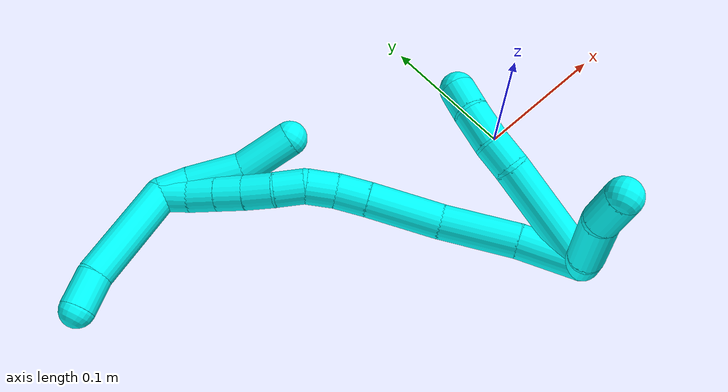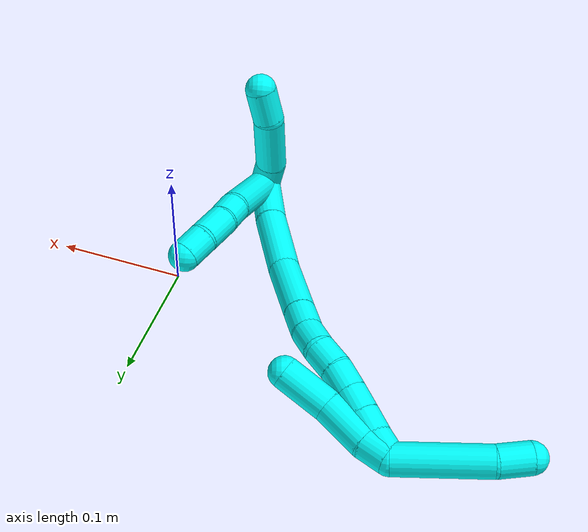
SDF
<sdf version="1.7">
 <world name="default">
  <model name="3">
   <static>0</static>
   <link name="3">
    <collision name="collision-cylinder-e_1_2_8">
     <pose>-0.026569 0.026808 -0.015492 -2.09481 -0.709182 1.14087</pose>
     <geometry><cylinder><radius>0.0125</radius><length>0.081598</length></cylinder></geometry>
     <surface>
      <friction><ode><mu>1.16</mu><mu2>1.16</mu2><slip1>0</slip1><slip2>0</slip2></ode></friction>
      <contact><ode><kp>1e+06</kp><kd>1</kd><max_vel>0</max_vel><min_depth>0.001</min_depth></ode></contact>
     </surface>
    </collision>
    <visual name="visual-cylinder-e_1_2_8">
     <pose>-0.026569 0.026808 -0.015492 -2.09481 -0.709182 1.14087</pose>
     <geometry><cylinder><radius>0.0125</radius><length>0.081598</length></cylinder></geometry>
     <material><ambient>0.003922 1 0.996078 1</ambient></material>
    </visual>
    <collision name="collision-cylinder-e_2_8_9">
     <pose>-0.06114 0.057868 -0.035552 -2.3918 -0.908447 1.78491</pose>
     <geometry><cylinder><radius>0.0125</radius><length>0.020296</length></cylinder></geometry>
     <surface>
      <friction><ode><mu>1.16</mu><mu2>1.16</mu2><slip1>0</slip1><slip2>0</slip2></ode></friction>
      <contact><ode><kp>1e+06</kp><kd>1</kd><max_vel>0</max_vel><min_depth>0.001</min_depth></ode></contact>
     </surface>
    </collision>
    <visual name="visual-cylinder-e_2_8_9">
     <pose>-0.06114 0.057868 -0.035552 -2.3918 -0.908447 1.78491</pose>
     <geometry><cylinder><radius>0.0125</radius><length>0.020296</length></cylinder></geometry>
     <material><ambient>0.003922 1 0.996078 1</ambient></material>
    </visual>
    <collision name="collision-cylinder-e_3_9_10">
     <pose>-0.079559 0.065968 -0.04768 -2.67099 -0.887359 2.20724</pose>
     <geometry><cylinder><radius>0.0125</radius><length>0.026868</length></cylinder></geometry>
     <surface>
      <friction><ode><mu>1.16</mu><mu2>1.16</mu2><slip1>0</slip1><slip2>0</slip2></ode></friction>
      <contact><ode><kp>1e+06</kp><kd>1</kd><max_vel>0</max_vel><min_depth>0.001</min_depth></ode></contact>
     </surface>
    </collision>
    <visual name="visual-cylinder-e_3_9_10">
     <pose>-0.079559 0.065968 -0.04768 -2.67099 -0.887359 2.20724</pose>
     <geometry><cylinder><radius>0.0125</radius><length>0.026868</length></cylinder></geometry>
     <material><ambient>0.003922 1 0.996078 1</ambient></material>
    </visual>
    <collision name="collision-cylinder-e_4_10_6">
     <pose>-0.098194 0.070654 -0.061913 -3.01644 -0.884966 2.87863</pose>
     <geometry><cylinder><radius>0.0125</radius><length>0.021237</length></cylinder></geometry>
     <surface>
      <friction><ode><mu>1.16</mu><mu2>1.16</mu2><slip1>0</slip1><slip2>0</slip2></ode></friction>
      <contact><ode><kp>1e+06</kp><kd>1</kd><max_vel>0</max_vel><min_depth>0.001</min_depth></ode></contact>
     </surface>
    </collision>
    <visual name="visual-cylinder-e_4_10_6">
     <pose>-0.098194 0.070654 -0.061913 -3.01644 -0.884966 2.87863</pose>
     <geometry><cylinder><radius>0.0125</radius><length>0.021237</length></cylinder></geometry>
     <material><ambient>0.003922 1 0.996078 1</ambient></material>
    </visual>
    <collision name="collision-cylinder-e_1_2_11">
     <pose>0.003861 0.011032 0.000825 -1.49615 0.335773 -0.312004</pose>
     <geometry><cylinder><radius>0.0125</radius><length>0.023435</length></cylinder></geometry>
     <surface>
      <friction><ode><mu>1.16</mu><mu2>1.16</mu2><slip1>0</slip1><slip2>0</slip2></ode></friction>
      <contact><ode><kp>1e+06</kp><kd>1</kd><max_vel>0</max_vel><min_depth>0.001</min_depth></ode></contact>
     </surface>
    </collision>
    <visual name="visual-cylinder-e_1_2_11">
     <pose>0.003861 0.011032 0.000825 -1.49615 0.335773 -0.312004</pose>
     <geometry><cylinder><radius>0.0125</radius><length>0.023435</length></cylinder></geometry>
     <material><ambient>0.003922 1 0.996078 1</ambient></material>
    </visual>
    <collision name="collision-cylinder-e_2_11_12">
     <pose>0.014692 0.045147 -0.002756 -1.75943 0.288348 -0.347499</pose>
     <geometry><cylinder><radius>0.0125</radius><length>0.049022</length></cylinder></geometry>
     <surface>
      <friction><ode><mu>1.16</mu><mu2>1.16</mu2><slip1>0</slip1><slip2>0</slip2></ode></friction>
      <contact><ode><kp>1e+06</kp><kd>1</kd><max_vel>0</max_vel><min_depth>0.001</min_depth></ode></contact>
     </surface>
    </collision>
    <visual name="visual-cylinder-e_2_11_12">
     <pose>0.014692 0.045147 -0.002756 -1.75943 0.288348 -0.347499</pose>
     <geometry><cylinder><radius>0.0125</radius><length>0.049022</length></cylinder></geometry>
     <material><ambient>0.003922 1 0.996078 1</ambient></material>
    </visual>
    <collision name="collision-cylinder-e_3_12_5">
     <pose>0.028366 0.079234 -0.012021 -1.9865 0.508379 -0.758742</pose>
     <geometry><cylinder><radius>0.0125</radius><length>0.027543</length></cylinder></geometry>
     <surface>
      <friction><ode><mu>1.16</mu><mu2>1.16</mu2><slip1>0</slip1><slip2>0</slip2></ode></friction>
      <contact><ode><kp>1e+06</kp><kd>1</kd><max_vel>0</max_vel><min_depth>0.001</min_depth></ode></contact>
     </surface>
    </collision>
    <visual name="visual-cylinder-e_3_12_5">
     <pose>0.028366 0.079234 -0.012021 -1.9865 0.508379 -0.758742</pose>
     <geometry><cylinder><radius>0.0125</radius><length>0.027543</length></cylinder></geometry>
     <material><ambient>0.003922 1 0.996078 1</ambient></material>
    </visual>
    <collision name="collision-cylinder-e_1_2_13">
     <pose>-0.020975 0.007372 0.001987 -1.30757 -1.22171 0.984815</pose>
     <geometry><cylinder><radius>0.0125</radius><length>0.044642</length></cylinder></geometry>
     <surface>
      <friction><ode><mu>1.16</mu><mu2>1.16</mu2><slip1>0</slip1><slip2>0</slip2></ode></friction>
      <contact><ode><kp>1e+06</kp><kd>1</kd><max_vel>0</max_vel><min_depth>0.001</min_depth></ode></contact>
     </surface>
    </collision>
    <visual name="visual-cylinder-e_1_2_13">
     <pose>-0.020975 0.007372 0.001987 -1.30757 -1.22171 0.984815</pose>
     <geometry><cylinder><radius>0.0125</radius><length>0.044642</length></cylinder></geometry>
     <material><ambient>0.003922 1 0.996078 1</ambient></material>
    </visual>
    <collision name="collision-cylinder-e_2_13_14">
     <pose>-0.06762 0.023182 0.008821 -1.04932 -1.20843 0.760227</pose>
     <geometry><cylinder><radius>0.0125</radius><length>0.054907</length></cylinder></geometry>
     <surface>
      <friction><ode><mu>1.16</mu><mu2>1.16</mu2><slip1>0</slip1><slip2>0</slip2></ode></friction>
      <contact><ode><kp>1e+06</kp><kd>1</kd><max_vel>0</max_vel><min_depth>0.001</min_depth></ode></contact>
     </surface>
    </collision>
    <visual name="visual-cylinder-e_2_13_14">
     <pose>-0.06762 0.023182 0.008821 -1.04932 -1.20843 0.760227</pose>
     <geometry><cylinder><radius>0.0125</radius><length>0.054907</length></cylinder></geometry>
     <material><ambient>0.003922 1 0.996078 1</ambient></material>
    </visual>
    <collision name="collision-cylinder-e_3_14_15">
     <pose>-0.116176 0.044047 0.018259 -1.21698 -1.04609 0.76396</pose>
     <geometry><cylinder><radius>0.0125</radius><length>0.052887</length></cylinder></geometry>
     <surface>
      <friction><ode><mu>1.16</mu><mu2>1.16</mu2><slip1>0</slip1><slip2>0</slip2></ode></friction>
      <contact><ode><kp>1e+06</kp><kd>1</kd><max_vel>0</max_vel><min_depth>0.001</min_depth></ode></contact>
     </surface>
    </collision>
    <visual name="visual-cylinder-e_3_14_15">
     <pose>-0.116176 0.044047 0.018259 -1.21698 -1.04609 0.76396</pose>
     <geometry><cylinder><radius>0.0125</radius><length>0.052887</length></cylinder></geometry>
     <material><ambient>0.003922 1 0.996078 1</ambient></material>
    </visual>
    <collision name="collision-cylinder-e_4_15_16">
     <pose>-0.149111 0.061583 0.02514 -1.14923 -1.06238 0.727027</pose>
     <geometry><cylinder><radius>0.0125</radius><length>0.023007</length></cylinder></geometry>
     <surface>
      <friction><ode><mu>1.16</mu><mu2>1.16</mu2><slip1>0</slip1><slip2>0</slip2></ode></friction>
      <contact><ode><kp>1e+06</kp><kd>1</kd><max_vel>0</max_vel><min_depth>0.001</min_depth></ode></contact>
     </surface>
    </collision>
    <visual name="visual-cylinder-e_4_15_16">
     <pose>-0.149111 0.061583 0.02514 -1.14923 -1.06238 0.727027</pose>
     <geometry><cylinder><radius>0.0125</radius><length>0.023007</length></cylinder></geometry>
     <material><ambient>0.003922 1 0.996078 1</ambient></material>
    </visual>
    <collision name="collision-cylinder-e_5_16_17">
     <pose>-0.16779 0.072099 0.031086 -0.976357 -0.923393 0.516655</pose>
     <geometry><cylinder><radius>0.0125</radius><length>0.02164</length></cylinder></geometry>
     <surface>
      <friction><ode><mu>1.16</mu><mu2>1.16</mu2><slip1>0</slip1><slip2>0</slip2></ode></friction>
      <contact><ode><kp>1e+06</kp><kd>1</kd><max_vel>0</max_vel><min_depth>0.001</min_depth></ode></contact>
     </surface>
    </collision>
    <visual name="visual-cylinder-e_5_16_17">
     <pose>-0.16779 0.072099 0.031086 -0.976357 -0.923393 0.516655</pose>
     <geometry><cylinder><radius>0.0125</radius><length>0.02164</length></cylinder></geometry>
     <material><ambient>0.003922 1 0.996078 1</ambient></material>
    </visual>
    <collision name="collision-cylinder-e_6_17_18">
     <pose>-0.184926 0.080572 0.040584 -0.483459 -0.910954 0.240371</pose>
     <geometry><cylinder><radius>0.0125</radius><length>0.02153</length></cylinder></geometry>
     <surface>
      <friction><ode><mu>1.16</mu><mu2>1.16</mu2><slip1>0</slip1><slip2>0</slip2></ode></friction>
      <contact><ode><kp>1e+06</kp><kd>1</kd><max_vel>0</max_vel><min_depth>0.001</min_depth></ode></contact>
     </surface>
    </collision>
    <visual name="visual-cylinder-e_6_17_18">
     <pose>-0.184926 0.080572 0.040584 -0.483459 -0.910954 0.240371</pose>
     <geometry><cylinder><radius>0.0125</radius><length>0.02153</length></cylinder></geometry>
     <material><ambient>0.003922 1 0.996078 1</ambient></material>
    </visual>
    <collision name="collision-cylinder-e_7_18_19">
     <pose>-0.202708 0.085464 0.051352 -0.354769 -1.05559 0.208256</pose>
     <geometry><cylinder><radius>0.0125</radius><length>0.021322</length></cylinder></geometry>
     <surface>
      <friction><ode><mu>1.16</mu><mu2>1.16</mu2><slip1>0</slip1><slip2>0</slip2></ode></friction>
      <contact><ode><kp>1e+06</kp><kd>1</kd><max_vel>0</max_vel><min_depth>0.001</min_depth></ode></contact>
     </surface>
    </collision>
    <visual name="visual-cylinder-e_7_18_19">
     <pose>-0.202708 0.085464 0.051352 -0.354769 -1.05559 0.208256</pose>
     <geometry><cylinder><radius>0.0125</radius><length>0.021322</length></cylinder></geometry>
     <material><ambient>0.003922 1 0.996078 1</ambient></material>
    </visual>
    <collision name="collision-cylinder-e_8_19_20">
     <pose>-0.220839 0.089273 0.060526 -0.436851 -1.08375 0.265665</pose>
     <geometry><cylinder><radius>0.0125</radius><length>0.020038</length></cylinder></geometry>
     <surface>
      <friction><ode><mu>1.16</mu><mu2>1.16</mu2><slip1>0</slip1><slip2>0</slip2></ode></friction>
      <contact><ode><kp>1e+06</kp><kd>1</kd><max_vel>0</max_vel><min_depth>0.001</min_depth></ode></contact>
     </surface>
    </collision>
    <visual name="visual-cylinder-e_8_19_20">
     <pose>-0.220839 0.089273 0.060526 -0.436851 -1.08375 0.265665</pose>
     <geometry><cylinder><radius>0.0125</radius><length>0.020038</length></cylinder></geometry>
     <material><ambient>0.003922 1 0.996078 1</ambient></material>
    </visual>
    <collision name="collision-cylinder-e_9_20_21">
     <pose>-0.238557 0.093161 0.069015 -0.422094 -1.08782 0.257688</pose>
     <geometry><cylinder><radius>0.0125</radius><length>0.020017</length></cylinder></geometry>
     <surface>
      <friction><ode><mu>1.16</mu><mu2>1.16</mu2><slip1>0</slip1><slip2>0</slip2></ode></friction>
      <contact><ode><kp>1e+06</kp><kd>1</kd><max_vel>0</max_vel><min_depth>0.001</min_depth></ode></contact>
     </surface>
    </collision>
    <visual name="visual-cylinder-e_9_20_21">
     <pose>-0.238557 0.093161 0.069015 -0.422094 -1.08782 0.257688</pose>
     <geometry><cylinder><radius>0.0125</radius><length>0.020017</length></cylinder></geometry>
     <material><ambient>0.003922 1 0.996078 1</ambient></material>
    </visual>
    <collision name="collision-cylinder-e_10_21_1">
     <pose>-0.255942 0.098338 0.077351 -0.674139 -1.0193 0.386829</pose>
     <geometry><cylinder><radius>0.0125</radius><length>0.020011</length></cylinder></geometry>
     <surface>
      <friction><ode><mu>1.16</mu><mu2>1.16</mu2><slip1>0</slip1><slip2>0</slip2></ode></friction>
      <contact><ode><kp>1e+06</kp><kd>1</kd><max_vel>0</max_vel><min_depth>0.001</min_depth></ode></contact>
     </surface>
    </collision>
    <visual name="visual-cylinder-e_10_21_1">
     <pose>-0.255942 0.098338 0.077351 -0.674139 -1.0193 0.386829</pose>
     <geometry><cylinder><radius>0.0125</radius><length>0.020011</length></cylinder></geometry>
     <material><ambient>0.003922 1 0.996078 1</ambient></material>
    </visual>
    <collision name="collision-cylinder-e_1_1_22">
     <pose>-0.265253 0.109421 0.117617 -0.212672 -0.021297 0.002273</pose>
     <geometry><cylinder><radius>0.0125</radius><length>0.074026</length></cylinder></geometry>
     <surface>
      <friction><ode><mu>1.16</mu><mu2>1.16</mu2><slip1>0</slip1><slip2>0</slip2></ode></friction>
      <contact><ode><kp>1e+06</kp><kd>1</kd><max_vel>0</max_vel><min_depth>0.001</min_depth></ode></contact>
     </surface>
    </collision>
    <visual name="visual-cylinder-e_1_1_22">
     <pose>-0.265253 0.109421 0.117617 -0.212672 -0.021297 0.002273</pose>
     <geometry><cylinder><radius>0.0125</radius><length>0.074026</length></cylinder></geometry>
     <material><ambient>0.003922 1 0.996078 1</ambient></material>
    </visual>
    <collision name="collision-cylinder-e_2_22_4">
     <pose>-0.264155 0.118145 0.166605 -0.071175 0.145704 -0.005197</pose>
     <geometry><cylinder><radius>0.0125</radius><length>0.025974</length></cylinder></geometry>
     <surface>
      <friction><ode><mu>1.16</mu><mu2>1.16</mu2><slip1>0</slip1><slip2>0</slip2></ode></friction>
      <contact><ode><kp>1e+06</kp><kd>1</kd><max_vel>0</max_vel><min_depth>0.001</min_depth></ode></contact>
     </surface>
    </collision>
    <visual name="visual-cylinder-e_2_22_4">
     <pose>-0.264155 0.118145 0.166605 -0.071175 0.145704 -0.005197</pose>
     <geometry><cylinder><radius>0.0125</radius><length>0.025974</length></cylinder></geometry>
     <material><ambient>0.003922 1 0.996078 1</ambient></material>
    </visual>
    <collision name="collision-cylinder-e_1_1_23">
     <pose>-0.258279 0.098548 0.073574 2.77064 0.632049 2.09968</pose>
     <geometry><cylinder><radius>0.0125</radius><length>0.020938</length></cylinder></geometry>
     <surface>
      <friction><ode><mu>1.16</mu><mu2>1.16</mu2><slip1>0</slip1><slip2>0</slip2></ode></friction>
      <contact><ode><kp>1e+06</kp><kd>1</kd><max_vel>0</max_vel><min_depth>0.001</min_depth></ode></contact>
     </surface>
    </collision>
    <visual name="visual-cylinder-e_1_1_23">
     <pose>-0.258279 0.098548 0.073574 2.77064 0.632049 2.09968</pose>
     <geometry><cylinder><radius>0.0125</radius><length>0.020938</length></cylinder></geometry>
     <material><ambient>0.003922 1 0.996078 1</ambient></material>
    </visual>
    <collision name="collision-cylinder-e_2_23_24">
     <pose>-0.237908 0.091102 0.05299 2.80948 0.812133 2.39823</pose>
     <geometry><cylinder><radius>0.0125</radius><length>0.039094</length></cylinder></geometry>
     <surface>
      <friction><ode><mu>1.16</mu><mu2>1.16</mu2><slip1>0</slip1><slip2>0</slip2></ode></friction>
      <contact><ode><kp>1e+06</kp><kd>1</kd><max_vel>0</max_vel><min_depth>0.001</min_depth></ode></contact>
     </surface>
    </collision>
    <visual name="visual-cylinder-e_2_23_24">
     <pose>-0.237908 0.091102 0.05299 2.80948 0.812133 2.39823</pose>
     <geometry><cylinder><radius>0.0125</radius><length>0.039094</length></cylinder></geometry>
     <material><ambient>0.003922 1 0.996078 1</ambient></material>
    </visual>
    <collision name="collision-cylinder-e_3_24_3">
     <pose>-0.212032 0.087017 0.024071 -3.1231 0.624794 -3.08433</pose>
     <geometry><cylinder><radius>0.0125</radius><length>0.039968</length></cylinder></geometry>
     <surface>
      <friction><ode><mu>1.16</mu><mu2>1.16</mu2><slip1>0</slip1><slip2>0</slip2></ode></friction>
      <contact><ode><kp>1e+06</kp><kd>1</kd><max_vel>0</max_vel><min_depth>0.001</min_depth></ode></contact>
     </surface>
    </collision>
    <visual name="visual-cylinder-e_3_24_3">
     <pose>-0.212032 0.087017 0.024071 -3.1231 0.624794 -3.08433</pose>
     <geometry><cylinder><radius>0.0125</radius><length>0.039968</length></cylinder></geometry>
     <material><ambient>0.003922 1 0.996078 1</ambient></material>
    </visual>
    <collision name="collision-sphere-3">
     <pose>-0.200343 0.087317 0.007865 0 -0 0</pose>
     <geometry><sphere><radius>0.0125</radius></sphere></geometry>
     <surface>
      <friction><ode><mu>1.16</mu><mu2>1.16</mu2><slip1>0</slip1><slip2>0</slip2></ode></friction>
      <contact><ode><kp>1e+06</kp><kd>1</kd><max_vel>0</max_vel><min_depth>0.001</min_depth></ode></contact>
     </surface>
    </collision>
    <visual name="visual-sphere-3">
     <pose>-0.200343 0.087317 0.007865 0 -0 0</pose>
     <geometry><sphere><radius>0.0125</radius></sphere></geometry>
     <material><ambient>0.003922 1 0.996078 1</ambient></material>
    </visual>
    <collision name="collision-sphere-24">
     <pose>-0.223722 0.086718 0.040277 0 -0 0</pose>
     <geometry><sphere><radius>0.0125</radius></sphere></geometry>
     <surface>
      <friction><ode><mu>1.16</mu><mu2>1.16</mu2><slip1>0</slip1><slip2>0</slip2></ode></friction>
      <contact><ode><kp>1e+06</kp><kd>1</kd><max_vel>0</max_vel><min_depth>0.001</min_depth></ode></contact>
     </surface>
    </collision>
    <visual name="visual-sphere-24">
     <pose>-0.223722 0.086718 0.040277 0 -0 0</pose>
     <geometry><sphere><radius>0.0125</radius></sphere></geometry>
     <material><ambient>0.003922 1 0.996078 1</ambient></material>
    </visual>
    <collision name="collision-sphere-23">
     <pose>-0.252094 0.095486 0.065702 0 -0 0</pose>
     <geometry><sphere><radius>0.0125</radius></sphere></geometry>
     <surface>
      <friction><ode><mu>1.16</mu><mu2>1.16</mu2><slip1>0</slip1><slip2>0</slip2></ode></friction>
      <contact><ode><kp>1e+06</kp><kd>1</kd><max_vel>0</max_vel><min_depth>0.001</min_depth></ode></contact>
     </surface>
    </collision>
    <visual name="visual-sphere-23">
     <pose>-0.252094 0.095486 0.065702 0 -0 0</pose>
     <geometry><sphere><radius>0.0125</radius></sphere></geometry>
     <material><ambient>0.003922 1 0.996078 1</ambient></material>
    </visual>
    <collision name="collision-sphere-4">
     <pose>-0.26227 0.119059 0.179422 0 -0 0</pose>
     <geometry><sphere><radius>0.0125</radius></sphere></geometry>
     <surface>
      <friction><ode><mu>1.16</mu><mu2>1.16</mu2><slip1>0</slip1><slip2>0</slip2></ode></friction>
      <contact><ode><kp>1e+06</kp><kd>1</kd><max_vel>0</max_vel><min_depth>0.001</min_depth></ode></contact>
     </surface>
    </collision>
    <visual name="visual-sphere-4">
     <pose>-0.26227 0.119059 0.179422 0 -0 0</pose>
     <geometry><sphere><radius>0.0125</radius></sphere></geometry>
     <material><ambient>0.003922 1 0.996078 1</ambient></material>
    </visual>
    <collision name="collision-sphere-22">
     <pose>-0.266041 0.117232 0.153788 0 -0 0</pose>
     <geometry><sphere><radius>0.0125</radius></sphere></geometry>
     <surface>
      <friction><ode><mu>1.16</mu><mu2>1.16</mu2><slip1>0</slip1><slip2>0</slip2></ode></friction>
      <contact><ode><kp>1e+06</kp><kd>1</kd><max_vel>0</max_vel><min_depth>0.001</min_depth></ode></contact>
     </surface>
    </collision>
    <visual name="visual-sphere-22">
     <pose>-0.266041 0.117232 0.153788 0 -0 0</pose>
     <geometry><sphere><radius>0.0125</radius></sphere></geometry>
     <material><ambient>0.003922 1 0.996078 1</ambient></material>
    </visual>
    <collision name="collision-sphere-1">
     <pose>-0.264465 0.10161 0.081447 0 -0 0</pose>
     <geometry><sphere><radius>0.0125</radius></sphere></geometry>
     <surface>
      <friction><ode><mu>1.16</mu><mu2>1.16</mu2><slip1>0</slip1><slip2>0</slip2></ode></friction>
      <contact><ode><kp>1e+06</kp><kd>1</kd><max_vel>0</max_vel><min_depth>0.001</min_depth></ode></contact>
     </surface>
    </collision>
    <visual name="visual-sphere-1">
     <pose>-0.264465 0.10161 0.081447 0 -0 0</pose>
     <geometry><sphere><radius>0.0125</radius></sphere></geometry>
     <material><ambient>0.003922 1 0.996078 1</ambient></material>
    </visual>
    <collision name="collision-sphere-21">
     <pose>-0.24742 0.095065 0.073255 0 -0 0</pose>
     <geometry><sphere><radius>0.0125</radius></sphere></geometry>
     <surface>
      <friction><ode><mu>1.16</mu><mu2>1.16</mu2><slip1>0</slip1><slip2>0</slip2></ode></friction>
      <contact><ode><kp>1e+06</kp><kd>1</kd><max_vel>0</max_vel><min_depth>0.001</min_depth></ode></contact>
     </surface>
    </collision>
    <visual name="visual-sphere-21">
     <pose>-0.24742 0.095065 0.073255 0 -0 0</pose>
     <geometry><sphere><radius>0.0125</radius></sphere></geometry>
     <material><ambient>0.003922 1 0.996078 1</ambient></material>
    </visual>
    <collision name="collision-sphere-11">
     <pose>0.007722 0.022064 0.00165 0 -0 0</pose>
     <geometry><sphere><radius>0.0125</radius></sphere></geometry>
     <surface>
      <friction><ode><mu>1.16</mu><mu2>1.16</mu2><slip1>0</slip1><slip2>0</slip2></ode></friction>
      <contact><ode><kp>1e+06</kp><kd>1</kd><max_vel>0</max_vel><min_depth>0.001</min_depth></ode></contact>
     </surface>
    </collision>
    <visual name="visual-sphere-11">
     <pose>0.007722 0.022064 0.00165 0 -0 0</pose>
     <geometry><sphere><radius>0.0125</radius></sphere></geometry>
     <material><ambient>0.003922 1 0.996078 1</ambient></material>
    </visual>
    <collision name="collision-sphere-6">
     <pose>-0.106412 0.071493 -0.068586 0 -0 0</pose>
     <geometry><sphere><radius>0.0125</radius></sphere></geometry>
     <surface>
      <friction><ode><mu>1.16</mu><mu2>1.16</mu2><slip1>0</slip1><slip2>0</slip2></ode></friction>
      <contact><ode><kp>1e+06</kp><kd>1</kd><max_vel>0</max_vel><min_depth>0.001</min_depth></ode></contact>
     </surface>
    </collision>
    <visual name="visual-sphere-6">
     <pose>-0.106412 0.071493 -0.068586 0 -0 0</pose>
     <geometry><sphere><radius>0.0125</radius></sphere></geometry>
     <material><ambient>0.003922 1 0.996078 1</ambient></material>
    </visual>
    <collision name="collision-sphere-10">
     <pose>-0.089976 0.069814 -0.055241 0 -0 0</pose>
     <geometry><sphere><radius>0.0125</radius></sphere></geometry>
     <surface>
      <friction><ode><mu>1.16</mu><mu2>1.16</mu2><slip1>0</slip1><slip2>0</slip2></ode></friction>
      <contact><ode><kp>1e+06</kp><kd>1</kd><max_vel>0</max_vel><min_depth>0.001</min_depth></ode></contact>
     </surface>
    </collision>
    <visual name="visual-sphere-10">
     <pose>-0.089976 0.069814 -0.055241 0 -0 0</pose>
     <geometry><sphere><radius>0.0125</radius></sphere></geometry>
     <material><ambient>0.003922 1 0.996078 1</ambient></material>
    </visual>
    <collision name="collision-sphere-9">
     <pose>-0.069142 0.062121 -0.040119 0 -0 0</pose>
     <geometry><sphere><radius>0.0125</radius></sphere></geometry>
     <surface>
      <friction><ode><mu>1.16</mu><mu2>1.16</mu2><slip1>0</slip1><slip2>0</slip2></ode></friction>
      <contact><ode><kp>1e+06</kp><kd>1</kd><max_vel>0</max_vel><min_depth>0.001</min_depth></ode></contact>
     </surface>
    </collision>
    <visual name="visual-sphere-9">
     <pose>-0.069142 0.062121 -0.040119 0 -0 0</pose>
     <geometry><sphere><radius>0.0125</radius></sphere></geometry>
     <material><ambient>0.003922 1 0.996078 1</ambient></material>
    </visual>
    <collision name="collision-sphere-2">
     <geometry><sphere><radius>0.0125</radius></sphere></geometry>
     <surface>
      <friction><ode><mu>1.16</mu><mu2>1.16</mu2><slip1>0</slip1><slip2>0</slip2></ode></friction>
      <contact><ode><kp>1e+06</kp><kd>1</kd><max_vel>0</max_vel><min_depth>0.001</min_depth></ode></contact>
     </surface>
    </collision>
    <visual name="visual-sphere-2">
     <geometry><sphere><radius>0.0125</radius></sphere></geometry>
     <material><ambient>0.003922 1 0.996078 1</ambient></material>
    </visual>
    <collision name="collision-sphere-19">
     <pose>-0.211985 0.087289 0.056278 0 -0 0</pose>
     <geometry><sphere><radius>0.0125</radius></sphere></geometry>
     <surface>
      <friction><ode><mu>1.16</mu><mu2>1.16</mu2><slip1>0</slip1><slip2>0</slip2></ode></friction>
      <contact><ode><kp>1e+06</kp><kd>1</kd><max_vel>0</max_vel><min_depth>0.001</min_depth></ode></contact>
     </surface>
    </collision>
    <visual name="visual-sphere-19">
     <pose>-0.211985 0.087289 0.056278 0 -0 0</pose>
     <geometry><sphere><radius>0.0125</radius></sphere></geometry>
     <material><ambient>0.003922 1 0.996078 1</ambient></material>
    </visual>
    <collision name="collision-sphere-8">
     <pose>-0.053138 0.053615 -0.030984 0 -0 0</pose>
     <geometry><sphere><radius>0.0125</radius></sphere></geometry>
     <surface>
      <friction><ode><mu>1.16</mu><mu2>1.16</mu2><slip1>0</slip1><slip2>0</slip2></ode></friction>
      <contact><ode><kp>1e+06</kp><kd>1</kd><max_vel>0</max_vel><min_depth>0.001</min_depth></ode></contact>
     </surface>
    </collision>
    <visual name="visual-sphere-8">
     <pose>-0.053138 0.053615 -0.030984 0 -0 0</pose>
     <geometry><sphere><radius>0.0125</radius></sphere></geometry>
     <material><ambient>0.003922 1 0.996078 1</ambient></material>
    </visual>
    <collision name="collision-sphere-12">
     <pose>0.021662 0.068229 -0.007163 0 -0 0</pose>
     <geometry><sphere><radius>0.0125</radius></sphere></geometry>
     <surface>
      <friction><ode><mu>1.16</mu><mu2>1.16</mu2><slip1>0</slip1><slip2>0</slip2></ode></friction>
      <contact><ode><kp>1e+06</kp><kd>1</kd><max_vel>0</max_vel><min_depth>0.001</min_depth></ode></contact>
     </surface>
    </collision>
    <visual name="visual-sphere-12">
     <pose>0.021662 0.068229 -0.007163 0 -0 0</pose>
     <geometry><sphere><radius>0.0125</radius></sphere></geometry>
     <material><ambient>0.003922 1 0.996078 1</ambient></material>
    </visual>
    <collision name="collision-sphere-5">
     <pose>0.035069 0.09024 -0.016879 0 -0 0</pose>
     <geometry><sphere><radius>0.0125</radius></sphere></geometry>
     <surface>
      <friction><ode><mu>1.16</mu><mu2>1.16</mu2><slip1>0</slip1><slip2>0</slip2></ode></friction>
      <contact><ode><kp>1e+06</kp><kd>1</kd><max_vel>0</max_vel><min_depth>0.001</min_depth></ode></contact>
     </surface>
    </collision>
    <visual name="visual-sphere-5">
     <pose>0.035069 0.09024 -0.016879 0 -0 0</pose>
     <geometry><sphere><radius>0.0125</radius></sphere></geometry>
     <material><ambient>0.003922 1 0.996078 1</ambient></material>
    </visual>
    <collision name="collision-sphere-13">
     <pose>-0.041949 0.014743 0.003973 0 -0 0</pose>
     <geometry><sphere><radius>0.0125</radius></sphere></geometry>
     <surface>
      <friction><ode><mu>1.16</mu><mu2>1.16</mu2><slip1>0</slip1><slip2>0</slip2></ode></friction>
      <contact><ode><kp>1e+06</kp><kd>1</kd><max_vel>0</max_vel><min_depth>0.001</min_depth></ode></contact>
     </surface>
    </collision>
    <visual name="visual-sphere-13">
     <pose>-0.041949 0.014743 0.003973 0 -0 0</pose>
     <geometry><sphere><radius>0.0125</radius></sphere></geometry>
     <material><ambient>0.003922 1 0.996078 1</ambient></material>
    </visual>
    <collision name="collision-sphere-14">
     <pose>-0.09329 0.03162 0.013669 0 -0 0</pose>
     <geometry><sphere><radius>0.0125</radius></sphere></geometry>
     <surface>
      <friction><ode><mu>1.16</mu><mu2>1.16</mu2><slip1>0</slip1><slip2>0</slip2></ode></friction>
      <contact><ode><kp>1e+06</kp><kd>1</kd><max_vel>0</max_vel><min_depth>0.001</min_depth></ode></contact>
     </surface>
    </collision>
    <visual name="visual-sphere-14">
     <pose>-0.09329 0.03162 0.013669 0 -0 0</pose>
     <geometry><sphere><radius>0.0125</radius></sphere></geometry>
     <material><ambient>0.003922 1 0.996078 1</ambient></material>
    </visual>
    <collision name="collision-sphere-15">
     <pose>-0.139062 0.056473 0.022849 0 -0 0</pose>
     <geometry><sphere><radius>0.0125</radius></sphere></geometry>
     <surface>
      <friction><ode><mu>1.16</mu><mu2>1.16</mu2><slip1>0</slip1><slip2>0</slip2></ode></friction>
      <contact><ode><kp>1e+06</kp><kd>1</kd><max_vel>0</max_vel><min_depth>0.001</min_depth></ode></contact>
     </surface>
    </collision>
    <visual name="visual-sphere-15">
     <pose>-0.139062 0.056473 0.022849 0 -0 0</pose>
     <geometry><sphere><radius>0.0125</radius></sphere></geometry>
     <material><ambient>0.003922 1 0.996078 1</ambient></material>
    </visual>
    <collision name="collision-sphere-16">
     <pose>-0.159159 0.066692 0.027432 0 -0 0</pose>
     <geometry><sphere><radius>0.0125</radius></sphere></geometry>
     <surface>
      <friction><ode><mu>1.16</mu><mu2>1.16</mu2><slip1>0</slip1><slip2>0</slip2></ode></friction>
      <contact><ode><kp>1e+06</kp><kd>1</kd><max_vel>0</max_vel><min_depth>0.001</min_depth></ode></contact>
     </surface>
    </collision>
    <visual name="visual-sphere-16">
     <pose>-0.159159 0.066692 0.027432 0 -0 0</pose>
     <geometry><sphere><radius>0.0125</radius></sphere></geometry>
     <material><ambient>0.003922 1 0.996078 1</ambient></material>
    </visual>
    <collision name="collision-sphere-17">
     <pose>-0.17642 0.077505 0.034741 0 -0 0</pose>
     <geometry><sphere><radius>0.0125</radius></sphere></geometry>
     <surface>
      <friction><ode><mu>1.16</mu><mu2>1.16</mu2><slip1>0</slip1><slip2>0</slip2></ode></friction>
      <contact><ode><kp>1e+06</kp><kd>1</kd><max_vel>0</max_vel><min_depth>0.001</min_depth></ode></contact>
     </surface>
    </collision>
    <visual name="visual-sphere-17">
     <pose>-0.17642 0.077505 0.034741 0 -0 0</pose>
     <geometry><sphere><radius>0.0125</radius></sphere></geometry>
     <material><ambient>0.003922 1 0.996078 1</ambient></material>
    </visual>
    <collision name="collision-sphere-18">
     <pose>-0.193431 0.08364 0.046426 0 -0 0</pose>
     <geometry><sphere><radius>0.0125</radius></sphere></geometry>
     <surface>
      <friction><ode><mu>1.16</mu><mu2>1.16</mu2><slip1>0</slip1><slip2>0</slip2></ode></friction>
      <contact><ode><kp>1e+06</kp><kd>1</kd><max_vel>0</max_vel><min_depth>0.001</min_depth></ode></contact>
     </surface>
    </collision>
    <visual name="visual-sphere-18">
     <pose>-0.193431 0.08364 0.046426 0 -0 0</pose>
     <geometry><sphere><radius>0.0125</radius></sphere></geometry>
     <material><ambient>0.003922 1 0.996078 1</ambient></material>
    </visual>
    <collision name="collision-sphere-20">
     <pose>-0.229693 0.091257 0.064775 0 -0 0</pose>
     <geometry><sphere><radius>0.0125</radius></sphere></geometry>
     <surface>
      <friction><ode><mu>1.16</mu><mu2>1.16</mu2><slip1>0</slip1><slip2>0</slip2></ode></friction>
      <contact><ode><kp>1e+06</kp><kd>1</kd><max_vel>0</max_vel><min_depth>0.001</min_depth></ode></contact>
     </surface>
    </collision>
    <visual name="visual-sphere-20">
     <pose>-0.229693 0.091257 0.064775 0 -0 0</pose>
     <geometry><sphere><radius>0.0125</radius></sphere></geometry>
     <material><ambient>0.003922 1 0.996078 1</ambient></material>
    </visual>
    <inertial>
     <pose>-0.128267 0.06353 0.028641 0 -0 0</pose>
     <mass>0.75</mass>
     <inertia><ixx>0.0001</ixx><ixy>0</ixy><ixz>0</ixz><iyy>0.000184</iyy><iyz>0</iyz><izz>-4e-06</izz></inertia>
    </inertial>
   </link>
   <pose>-0.033821 -0.111539 0.015278 1.72414 -0.333326 -1.25178</pose>
  </model>
 </world>
</sdf>
